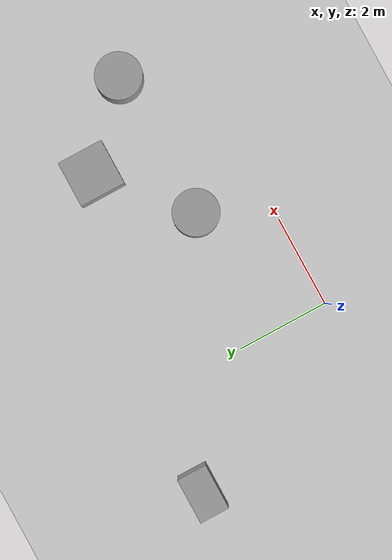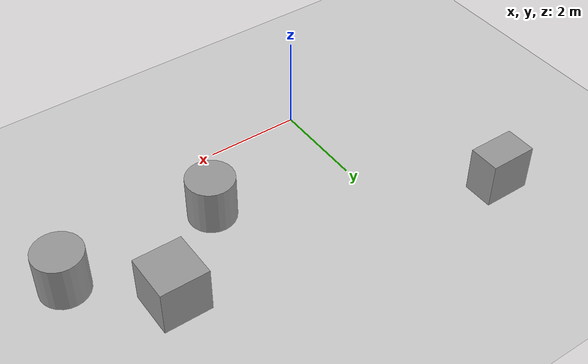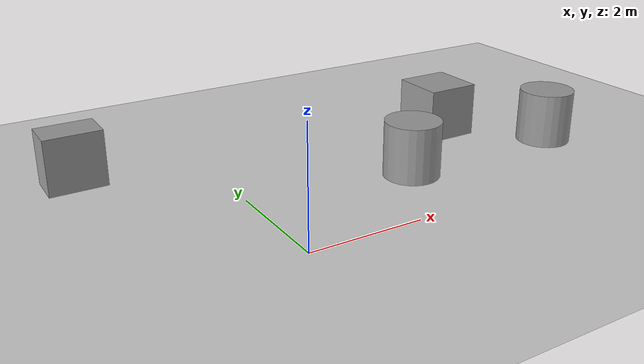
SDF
<sdf version="1.7">
 <world name="default">
  <model name="ground_plane">
   <static>1</static>
   <link name="link">
    <collision name="collision">
     <geometry><plane><normal>0 0 1</normal><size>100 100</size></plane></geometry>
     <surface><friction><ode><mu>100</mu><mu2>50</mu2></ode></friction></surface>
    </collision>
    <visual name="visual">
     <cast_shadows>0</cast_shadows>
     <geometry><plane><normal>0 0 1</normal><size>100 100</size></plane></geometry>
     <material>
      <script><uri>file://media/materials/scripts/gazebo.material</uri><name>Gazebo/Grey</name></script>
     </material>
    </visual>
   </link>
  </model>
  <light name="sun" type="directional">
   <pose>0 0 10 0 -0 0</pose>
   <diffuse>0.8 0.8 0.8 1</diffuse>
   <specular>0.2 0.2 0.2 1</specular>
   <attenuation>
    <range>1000</range>
    <constant>0.9</constant>
    <linear>0.01</linear>
    <quadratic>0.001</quadratic>
   </attenuation>
   <direction>-0.5 0.1 -0.9</direction>
   <spot><inner_angle>0</inner_angle><outer_angle>0</outer_angle><falloff>0</falloff></spot>
  </light>
  <scene><shadows>0</shadows><ambient>0.4 0.4 0.4 1</ambient><background>0.7 0.7 0.7 1</background></scene>
  <physics type="ode">
   <real_time_update_rate>1000</real_time_update_rate>
   <max_step_size>0.001</max_step_size>
   <real_time_factor>1</real_time_factor>
   <ode>
    <solver>
     <type>quick</type>
     <iters>150</iters>
     <precon_iters>0</precon_iters>
     <sor>1.4</sor>
     <use_dynamic_moi_rescaling>1</use_dynamic_moi_rescaling>
    </solver>
    <constraints>
     <cfm>1e-05</cfm>
     <erp>0.2</erp>
     <contact_max_correcting_vel>2000</contact_max_correcting_vel>
     <contact_surface_layer>0.01</contact_surface_layer>
    </constraints>
   </ode>
  </physics>
  <gravity>0 0 -9.8</gravity>
  <magnetic_field>6e-06 2.3e-05 -4.2e-05</magnetic_field>
  <atmosphere type="adiabatic"/>
  <audio><device>default</device></audio>
  <spherical_coordinates>
   <surface_model>EARTH_WGS84</surface_model>
   <latitude_deg>0</latitude_deg>
   <longitude_deg>0</longitude_deg>
   <elevation>0</elevation>
   <heading_deg>0</heading_deg>
  </spherical_coordinates>
  <model name="unit_cylinder">
   <pose>6.13039 1.53523 0.499997 3e-06 4e-06 -0</pose>
   <link name="link">
    <inertial>
     <mass>1</mass>
     <inertia><ixx>0.145833</ixx><ixy>0</ixy><ixz>0</ixz><iyy>0.145833</iyy><iyz>0</iyz><izz>0.125</izz></inertia>
    </inertial>
    <collision name="collision">
     <geometry><cylinder><radius>0.5</radius><length>1</length></cylinder></geometry>
    </collision>
    <visual name="visual">
     <geometry><cylinder><radius>0.5</radius><length>1</length></cylinder></geometry>
     <material>
      <script><name>Gazebo/Grey</name><uri>file://media/materials/scripts/gazebo.material</uri></script>
     </material>
    </visual>
   </link>
  </model>
  <model name="unit_box">
   <pose>4.64976 2.97377 0.5 0 -0 0</pose>
   <link name="link">
    <inertial>
     <mass>1</mass>
     <inertia>
      <ixx>0.166667</ixx>
      <ixy>0</ixy>
      <ixz>0</ixz>
      <iyy>0.166667</iyy>
      <iyz>0</iyz>
      <izz>0.166667</izz>
     </inertia>
    </inertial>
    <collision name="collision"><geometry><box><size>1 1 1</size></box></geometry></collision>
    <visual name="visual">
     <geometry><box><size>1 1 1</size></box></geometry>
     <material>
      <script><name>Gazebo/Grey</name><uri>file://media/materials/scripts/gazebo.material</uri></script>
     </material>
    </visual>
   </link>
  </model>
  <model name="unit_cylinder_0">
   <pose>2.92404 1.47517 0.499997 -4e-06 -4e-06 -0</pose>
   <link name="link">
    <inertial>
     <mass>1</mass>
     <inertia><ixx>0.145833</ixx><ixy>0</ixy><ixz>0</ixz><iyy>0.145833</iyy><iyz>0</iyz><izz>0.125</izz></inertia>
    </inertial>
    <collision name="collision">
     <geometry><cylinder><radius>0.5</radius><length>1</length></cylinder></geometry>
    </collision>
    <visual name="visual">
     <geometry><cylinder><radius>0.5</radius><length>1</length></cylinder></geometry>
     <material>
      <script><name>Gazebo/Grey</name><uri>file://media/materials/scripts/gazebo.material</uri></script>
     </material>
    </visual>
   </link>
  </model>
  <model name="unit_box_0">
   <pose>-2.20088 4.09253 0.5 0 -0 0</pose>
   <link name="link">
    <inertial>
     <mass>1</mass>
     <inertia>
      <ixx>0.166667</ixx>
      <ixy>0</ixy>
      <ixz>0</ixz>
      <iyy>0.166667</iyy>
      <iyz>0</iyz>
      <izz>0.166667</izz>
     </inertia>
    </inertial>
    <collision name="collision"><geometry><box><size>1 0.655411 1</size></box></geometry></collision>
    <visual name="visual">
     <geometry><box><size>1 0.655411 1</size></box></geometry>
     <material>
      <script><name>Gazebo/Grey</name><uri>file://media/materials/scripts/gazebo.material</uri></script>
     </material>
    </visual>
   </link>
  </model>
 </world>
</sdf>
